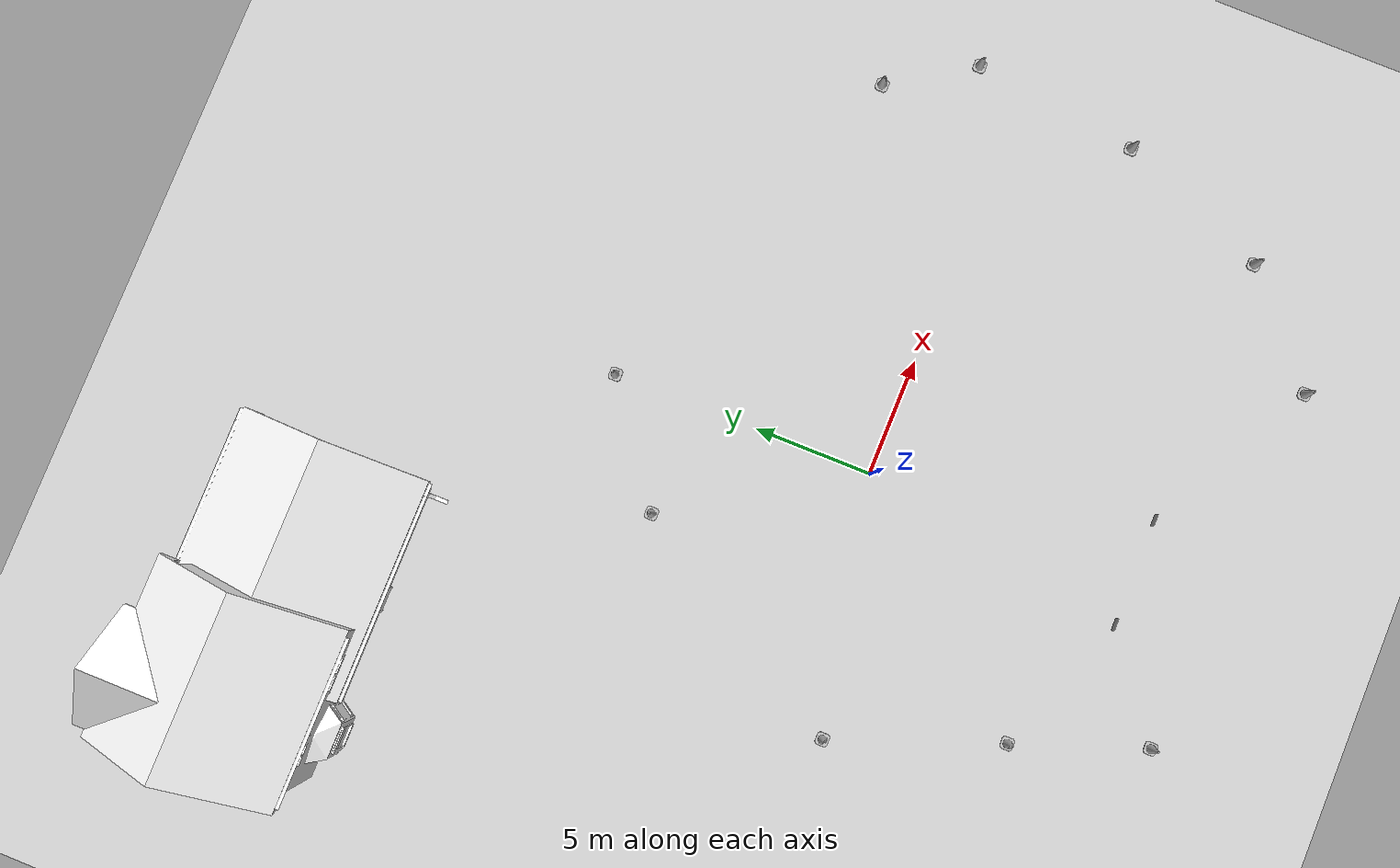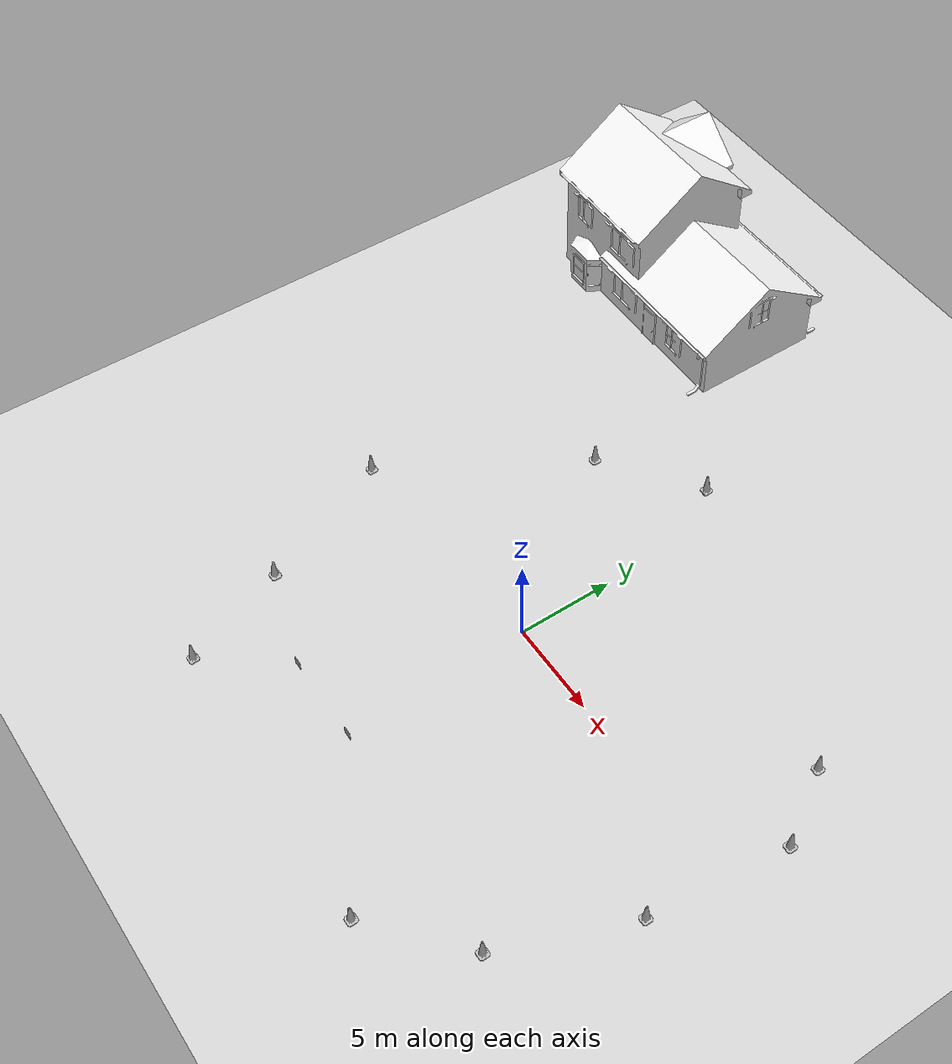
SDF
<sdf version="1.4">
 <world name="vrc_task_2">
  <scene><ambient>0.2 0.2 0.2 1.0</ambient></scene>
  <physics type="ode">
   <gravity>0 0 -9.81</gravity>
   <ode>
    <solver><type>quick</type><iters>50</iters><sor>1.4</sor></solver>
    <constraints>
     <cfm>0.0</cfm>
     <erp>0.2</erp>
     <contact_max_correcting_vel>100.0</contact_max_correcting_vel>
     <contact_surface_layer>0.0</contact_surface_layer>
    </constraints>
   </ode>
   <real_time_update_rate>1000</real_time_update_rate>
   <max_step_size>0.001</max_step_size>
  </physics>
  <light type="directional" name="sun">
   <pose>0 0 100 0 0 0</pose>
   <diffuse>0.8 0.8 0.8 1</diffuse>
   <specular>0.1 0.1 0.1 1</specular>
   <attenuation>
    <range>1000</range>
    <constant>0.9</constant>
    <linear>0.01</linear>
    <quadratic>0.001</quadratic>
   </attenuation>
   <direction>0.2 0.0 -1.0</direction>
  </light>
  <light type="point" name="light_bulb">
   <cast_shadows>false</cast_shadows>
   <pose>-7.5 -41 5 0 0 0</pose>
   <diffuse>0.3 0.3 0.3 1</diffuse>
   <specular>0.0 0.0 0.0 1</specular>
   <attenuation>
    <range>80</range>
    <constant>0.9</constant>
    <linear>0.01</linear>
    <quadratic>0.001</quadratic>
   </attenuation>
  </light>
  <include>
   <uri>model://construction_cone</uri>
   <name>cone_0</name>
   <static>true</static>
   <pose>15.763 -4.704 2.66 0 0 0</pose>
  </include>
  <include>
   <uri>model://construction_cone</uri>
   <name>cone_1</name>
   <static>true</static>
   <pose>-4.82 7.6 2.75  0 0 0</pose>
  </include>
  <include>
   <uri>model://construction_cone</uri>
   <name>cone_2</name>
   <static>true</static>
   <pose>-0.271239 10.978891 2.65053 0 0 0</pose>
  </include>
  <include>
   <uri>model://construction_cone</uri>
   <name>cone_3</name>
   <static>true</static>
   <pose>-10.430363 -1.794219 2.84281 0 0 0</pose>
  </include>
  <include>
   <uri>model://construction_cone</uri>
   <name>cone_4</name>
   <static>true</static>
   <pose>14.481933 5.461687 2.651944 0 0 0</pose>
  </include>
  <include>
   <uri>model://construction_cone</uri>
   <name>cone_5</name>
   <static>true</static>
   <pose>16.632443 2.107978 2.72098 0 0 0</pose>
  </include>
  <include>
   <uri>model://construction_cone</uri>
   <name>cone_6</name>
   <static>true</static>
   <pose>13.247138 -10.905164 2.549825 0 0 0</pose>
  </include>
  <include>
   <uri>model://construction_cone</uri>
   <name>cone_7</name>
   <static>true</static>
   <pose>9.107997 -14.508799 2.6829 0 0 0</pose>
  </include>
  <include>
   <uri>model://construction_cone</uri>
   <name>cone_8</name>
   <static>true</static>
   <pose>-6.052604 -13.905914 2.1020 0 0 0</pose>
  </include>
  <include>
   <uri>model://construction_cone</uri>
   <name>cone_9</name>
   <static>true</static>
   <pose>-7.950964 -8.615575 2.20553 0 0 0</pose>
  </include>
  <include><uri>model://house_3</uri><static>true</static><pose>-13 20 0 0 0 0</pose></include>
  <include>
   <uri>model://gate_number_3</uri>
   <name>gate_number_3_a</name>
   <pose>-2.15 -10.5 3.75 0 0 1.5707</pose>
  </include>
  <include>
   <uri>model://gate_number_3</uri>
   <name>gate_number_3_b</name>
   <pose>2.15 -10.5 3.75 0 0 1.5707</pose>
  </include>
  <model name="mud_ground_plane">
   <static>true</static>
   <pose>0.0 0.0 -0.59 0 0 0</pose>
   <link name="link">
    <collision name="collision">
     <geometry><plane><normal>0 0 1</normal><size>100 100</size></plane></geometry>
     <surface><friction><ode><mu>.5</mu><mu2>.5</mu2></ode></friction></surface>
    </collision>
    <visual name="visual">
     <cast_shadows>false</cast_shadows>
     <geometry><plane><normal>0 0 1</normal><size>100 100</size></plane></geometry>
     <material>
      <script>
       <uri>model://mud_box/materials/scripts</uri>
       <uri>model://mud_box/materials/textures</uri>
       <name>vrc/mud</name>
      </script>
     </material>
    </visual>
   </link>
  </model>
 </world>
</sdf>

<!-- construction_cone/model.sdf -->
<sdf version="1.5">
  <model name="Construction Cone">
    <link name="link">
      <collision name="collision">
        <geometry>
          <mesh>
            <scale>10 10 10</scale>
            <uri>file://isr-testbed/construction_cone/meshes/construction_cone.dae</uri>
          </mesh>
        </geometry>
      </collision>
      <visual name="visual">
        <geometry>
          <mesh>
            <scale>10 10 10</scale>
            <uri>file://isr-testbed/construction_cone/meshes/construction_cone.dae</uri>
          </mesh>
        </geometry>
      </visual>
    </link>
  </model>
</sdf>

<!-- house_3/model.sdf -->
<sdf version="1.5">
  <model name="House 3">
    <static>true</static>
    <link name="link">
      <collision name="collision">
        <geometry>
          <mesh>
            <uri>model://house_3/meshes/house_3.dae</uri>
            <scale>1.5 1.5 1.5</scale>
          </mesh>
        </geometry>
      </collision>
      <visual name="visual">
        <geometry>
          <mesh>
            <uri>model://house_3/meshes/house_3.dae</uri>
            <scale>1.5 1.5 1.5</scale>
          </mesh>
        </geometry>
        <material>
          <diffuse>1.0 1.0 1.0 1.0</diffuse>
          <specular>0.0 0.0 0.0 1.0</specular>
          <pbr>
            <metal>
              <albedo_map>model://house_3/materials/textures/house_3.png</albedo_map>
            </metal>
          </pbr>
        </material>
      </visual>
    </link>
  </model>
</sdf>

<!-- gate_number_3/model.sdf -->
<sdf version="1.4">
  <model name="gate_number_3">
    <pose>0 0 .25 0 0 0</pose>
    <static>true</static>
    <link name="link">
      <collision name="collision">
        <geometry>
          <box>
            <size>0.01 0.5 0.5</size>
          </box>
        </geometry>
      </collision>

      <visual name="visual">
        <geometry>
          <mesh>
            <uri>model://gate_number_3/meshes/gate_number_3.dae</uri>
          </mesh>
        </geometry>
      </visual>
    </link>
  </model>
</sdf>
